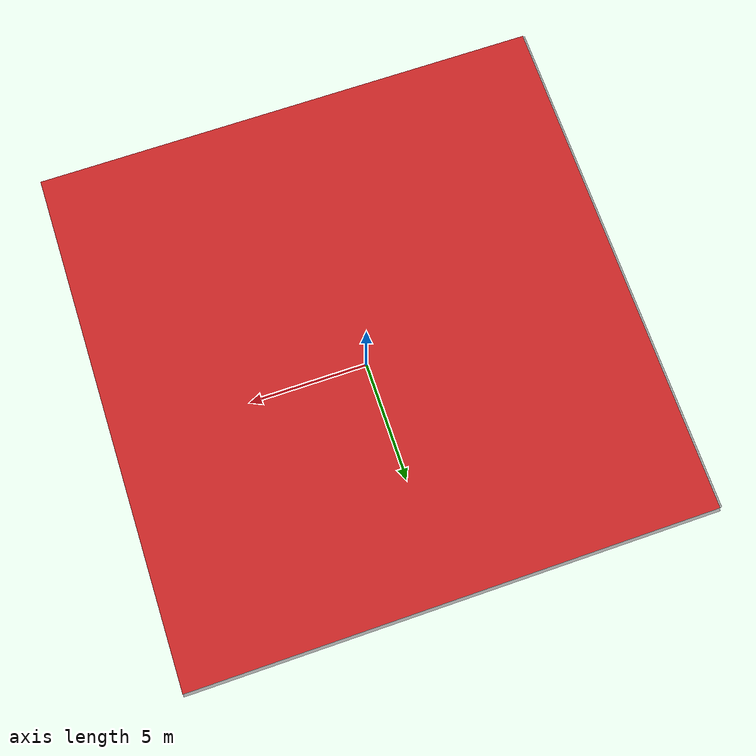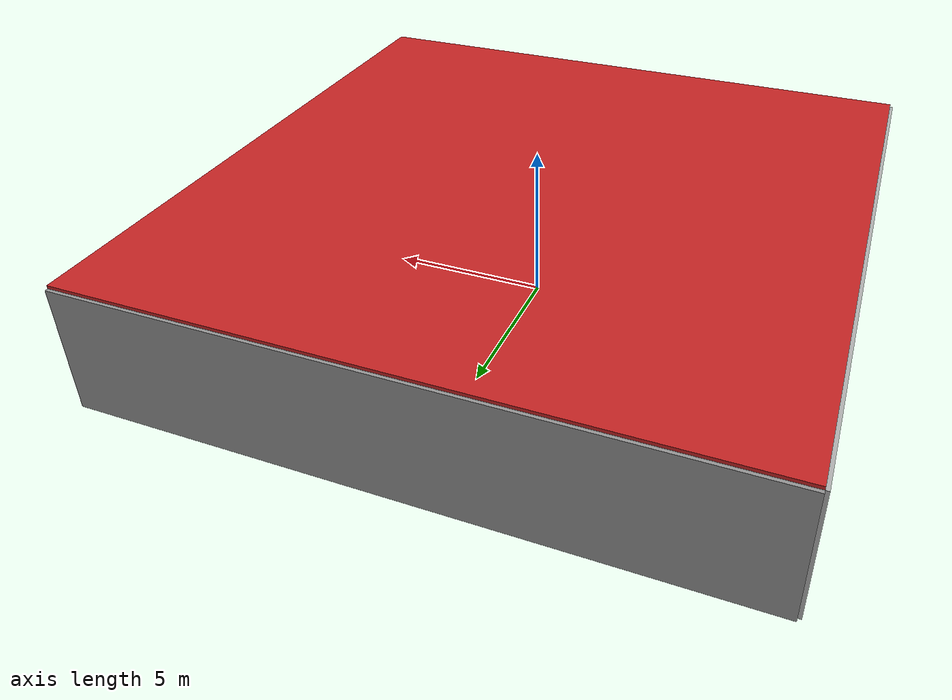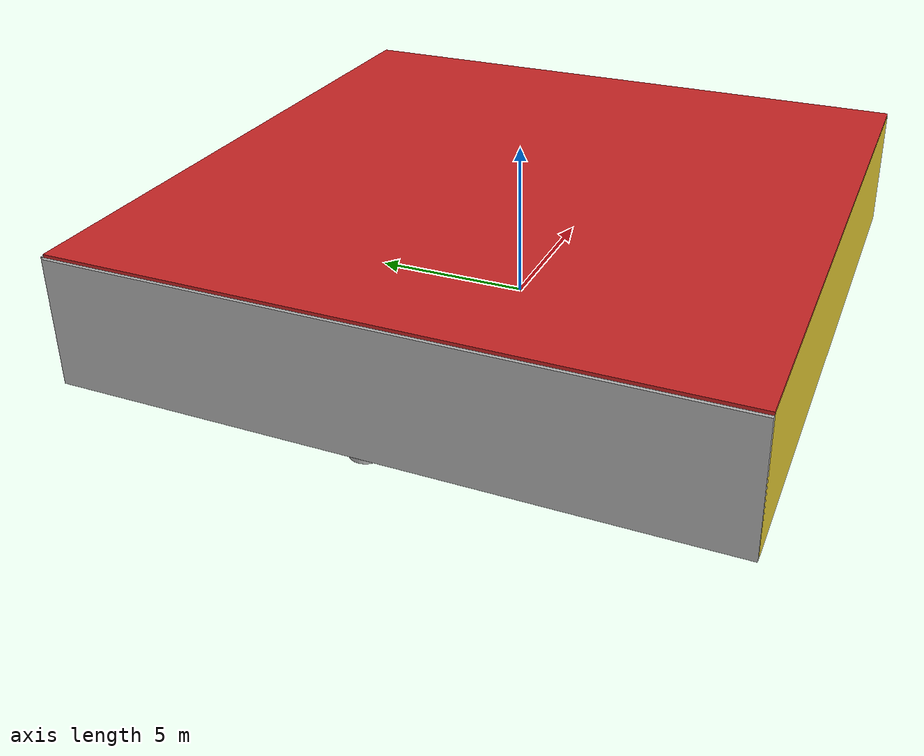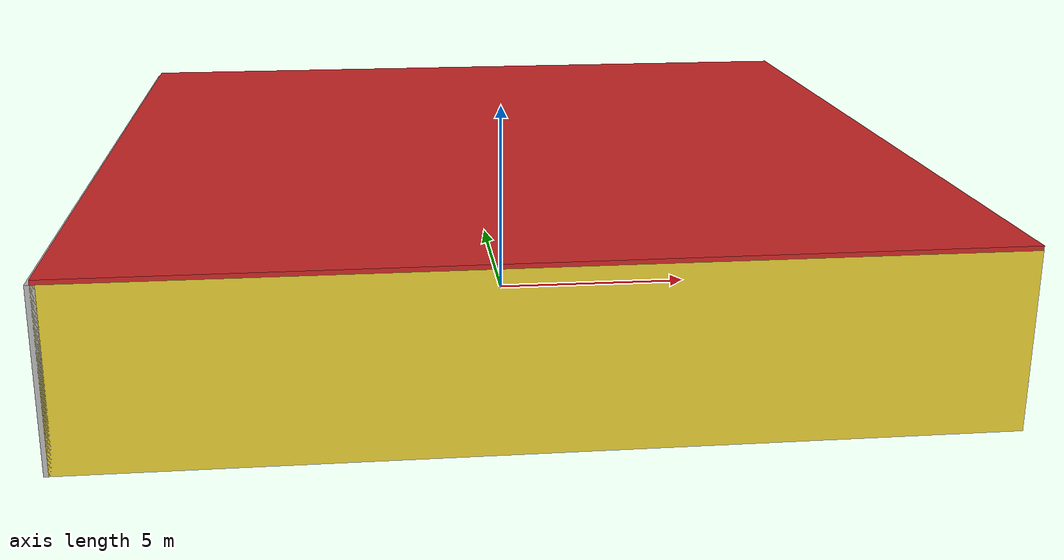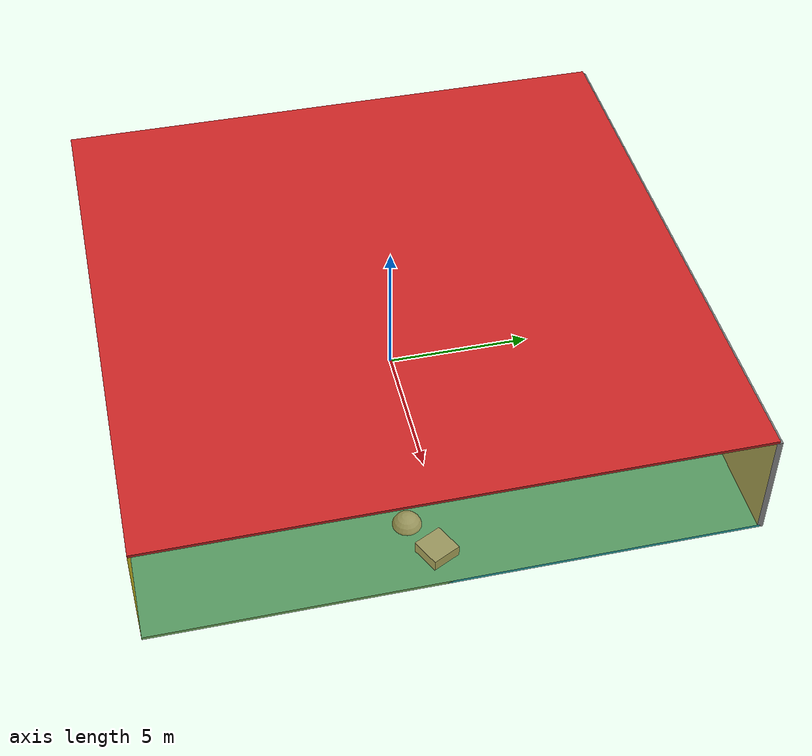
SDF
<sdf version="1.4">
 <world name="default">
  <physics type="ode">
   <max_step_size>0.001</max_step_size>
   <real_time_factor>1</real_time_factor>
   <real_time_update_rate>1000</real_time_update_rate>
   <gravity>0 0 -9.8</gravity>
  </physics>
  <scene><ambient>0.4 0.4 0.4 1</ambient><background>0.7 0.7 0.7 1</background><shadows>1</shadows></scene>
  <model name="Surrounding">
   <static>1</static>
   <link name="Ceiling">
    <collision name="Ceiling_Collision"><geometry><box><size>20 20 0.1</size></box></geometry></collision>
    <visual name="Ceiling_Visual">
     <geometry><box><size>20 20 0.1</size></box></geometry>
     <material>
      <script><uri>file://media/materials/scripts/gazebo.material</uri><name>Gazebo/RedGlow</name></script>
     </material>
    </visual>
    <pose>0 0 4.05 0 0 0</pose>
   </link>
   <link name="Wall_South">
    <collision name="Wall_South_Collision">
     <geometry><box><size>20 0 4</size></box></geometry>
     <pose>0 0 2 0 -0 0</pose>
    </collision>
    <visual name="Wall_South_Visual">
     <pose>0 0 2 0 -0 0</pose>
     <geometry><box><size>20 0 4</size></box></geometry>
     <material>
      <script><uri>file://media/materials/scripts/gazebo.material</uri><name>Gazebo/ZincYellow</name></script>
     </material>
    </visual>
    <velocity_decay><linear>0</linear><angular>0</angular></velocity_decay>
    <pose>0 -10 0 0 -0 0</pose>
   </link>
   <link name="Wall_East">
    <collision name="Wall_21_Collision">
     <geometry><box><size>20 0 4</size></box></geometry>
     <pose>0 0 2 0 -0 0</pose>
    </collision>
    <visual name="Wall_21_Visual">
     <pose>0 0 2 0 -0 0</pose>
     <geometry><box><size>20 0 4</size></box></geometry>
     <material>
      <script>
       <uri>file://media/materials/scripts/gazebo.material</uri>
       <name>Gazebo/YellowTransparent</name>
      </script>
     </material>
    </visual>
    <velocity_decay><linear>0</linear><angular>0</angular></velocity_decay>
    <pose>10 0 0 0 -0 1.5708</pose>
   </link>
   <link name="Wall_North">
    <collision name="Wall_22_Collision">
     <geometry><box><size>20 0.2 4</size></box></geometry>
     <pose>0 0 2 0 -0 0</pose>
    </collision>
    <visual name="Wall_22_Visual">
     <pose>0 0 2 0 -0 0</pose>
     <geometry><box><size>20 0.2 4</size></box></geometry>
     <material>
      <script><uri>file://media/materials/scripts/gazebo.material</uri><name>Gazebo/GreyGradientSky</name></script>
     </material>
    </visual>
    <velocity_decay><linear>0</linear><angular>0</angular></velocity_decay>
    <pose>0 10 0 0 -0 0</pose>
   </link>
   <link name="Wall_West">
    <collision name="Wall_23_Collision">
     <geometry><box><size>20 0.2 4</size></box></geometry>
     <pose>0 0 2 0 -0 0</pose>
    </collision>
    <visual name="Wall_23_Visual">
     <pose>0 0 2 0 -0 0</pose>
     <geometry><box><size>20 0.2 4</size></box></geometry>
     <material>
      <script><uri>file://media/materials/scripts/gazebo.material</uri><name>Gazebo/PioneerBody</name></script>
     </material>
    </visual>
    <velocity_decay><linear>0</linear><angular>0</angular></velocity_decay>
    <pose>-10 0 0 0 0 -1.5708</pose>
   </link>
   <link name="Ground_link">
    <collision name="collision">
     <pose>0 0 .05 0 -0 0</pose>
     <geometry><box><size>20 20 0.1</size></box></geometry>
    </collision>
    <visual name="visual">
     <pose>0 0 .05 0 -0 0</pose>
     <geometry><box><size>20 20 0.1</size></box></geometry>
     <material>
      <script><uri>file://media/materials/scripts/gazebo.material</uri><name>Gazebo/Turquoise</name></script>
     </material>
    </visual>
   </link>
   <static>1</static>
  </model>
  <spherical_coordinates>
   <surface_model>EARTH_WGS84</surface_model>
   <latitude_deg>0</latitude_deg>
   <longitude_deg>0</longitude_deg>
   <elevation>0</elevation>
   <heading_deg>0</heading_deg>
  </spherical_coordinates>
  <light name="lightball_0" type="diffuse">
   <diffuse>0.8 0.8 0.8 1</diffuse>
   <specular>0.2 0.2 0.2 1</specular>
   <attenuation>
    <range>100</range>
    <constant>0.7</constant>
    <linear>0.01</linear>
    <quadratic>0.001</quadratic>
   </attenuation>
   <direction>-0.5 0.1 -0.9</direction>
   <pose>5.63543841523 3.3627413835 1.107012897 0 0 0</pose>
  </light>
  <light name="lightball_1" type="diffuse">
   <diffuse>0.8 0.8 0.8 1</diffuse>
   <specular>0.2 0.2 0.2 1</specular>
   <attenuation>
    <range>100</range>
    <constant>0.7</constant>
    <linear>0.01</linear>
    <quadratic>0.001</quadratic>
   </attenuation>
   <direction>-0.5 0.1 -0.9</direction>
   <pose>6.28651552971 -1.50011301209 2.87327592391 0 0 0</pose>
  </light>
  <light name="lightball_2" type="diffuse">
   <diffuse>0.8 0.8 0.8 1</diffuse>
   <specular>0.2 0.2 0.2 1</specular>
   <attenuation>
    <range>100</range>
    <constant>0.7</constant>
    <linear>0.01</linear>
    <quadratic>0.001</quadratic>
   </attenuation>
   <direction>-0.5 0.1 -0.9</direction>
   <pose>-5.23633510727 1.61390015613 3.17753342037 0 0 0</pose>
  </light>
  <light name="lightball_3" type="diffuse">
   <diffuse>0.8 0.8 0.8 1</diffuse>
   <specular>0.2 0.2 0.2 1</specular>
   <attenuation>
    <range>100</range>
    <constant>0.7</constant>
    <linear>0.01</linear>
    <quadratic>0.001</quadratic>
   </attenuation>
   <direction>-0.5 0.1 -0.9</direction>
   <pose>6.95452704425 1.9765900877 1.96249618027 0 0 0</pose>
  </light>
  <light name="lightball_4" type="diffuse">
   <diffuse>0.8 0.8 0.8 1</diffuse>
   <specular>0.2 0.2 0.2 1</specular>
   <attenuation>
    <range>100</range>
    <constant>0.7</constant>
    <linear>0.01</linear>
    <quadratic>0.001</quadratic>
   </attenuation>
   <direction>-0.5 0.1 -0.9</direction>
   <pose>2.28461911887 2.3316555164 1.56552147713 0 0 0</pose>
  </light>
  <light name="lightball_5" type="diffuse">
   <diffuse>0.8 0.8 0.8 1</diffuse>
   <specular>0.2 0.2 0.2 1</specular>
   <attenuation>
    <range>100</range>
    <constant>0.7</constant>
    <linear>0.01</linear>
    <quadratic>0.001</quadratic>
   </attenuation>
   <direction>-0.5 0.1 -0.9</direction>
   <pose>9.60843019165 -5.2833176272 1.70039944485 0 0 0</pose>
  </light>
  <light name="lightball_6" type="diffuse">
   <diffuse>0.8 0.8 0.8 1</diffuse>
   <specular>0.2 0.2 0.2 1</specular>
   <attenuation>
    <range>100</range>
    <constant>0.7</constant>
    <linear>0.01</linear>
    <quadratic>0.001</quadratic>
   </attenuation>
   <direction>-0.5 0.1 -0.9</direction>
   <pose>6.32837892951 -9.15447927833 3.12907712222 0 0 0</pose>
  </light>
  <light name="lightball_7" type="diffuse">
   <diffuse>0.8 0.8 0.8 1</diffuse>
   <specular>0.2 0.2 0.2 1</specular>
   <attenuation>
    <range>100</range>
    <constant>0.7</constant>
    <linear>0.01</linear>
    <quadratic>0.001</quadratic>
   </attenuation>
   <direction>-0.5 0.1 -0.9</direction>
   <pose>-7.64292844378 -9.85374266515 0.560920000528 0 0 0</pose>
  </light>
  <include>
   <uri>model://textured_shapes</uri>
   <pose>-8.15934631694 1.82064809377 0 0 0 2.39413741509</pose>
  </include>
  <include><uri>model://cabinet</uri><pose>0.743221299874 -7.11786128445 0 0 0 2.92267509287</pose></include>
  <include><uri>model://cabinet</uri><pose>4.75771901327 -7.93109432027 0 0 0 0.782625940429</pose></include>
  <include>
   <uri>model://textured_shapes</uri>
   <pose>7.46707047321 -1.13650157863 0 0 0 2.0297140345</pose>
  </include>
 </world>
</sdf>

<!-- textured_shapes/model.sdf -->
<sdf version="1.6">
  <model name="textured_shapes">
    <pose>0 0 0.5 0 0 0</pose>
    <link name="box">
      <pose>0 -1.5 0 0 0 0</pose>
      <collision name="collision">
        <geometry>
          <box>
            <size>1 1 1</size>
          </box>
        </geometry>
      </collision>
      <visual name="visual">
        <geometry>
          <box>
            <size>1 1 1</size>
          </box>
        </geometry>
        <material>
          <script>
            <uri>model://../model_source/models/textured_shapes/materials/scripts</uri>
            <uri>model://../model_source/models/textured_shapes/materials/textures</uri>
            <name>TexturedShape/Squares</name>
          </script>
        </material>
      </visual>
    </link>
    <link name="sphere">
      <collision name="collision">
        <geometry>
          <sphere>
            <radius>0.5</radius>
          </sphere>
        </geometry>
      </collision>
      <visual name="visual">
        <geometry>
          <sphere>
            <radius>0.5</radius>
          </sphere>
        </geometry>
        <material>
          <script>
            <uri>model://../model_source/models/textured_shapes/materials/scripts</uri>
            <uri>model://../model_source/models/textured_shapes/materials/textures</uri>
            <name>TexturedShape/Squares</name>
          </script>
        </material>
      </visual>
    </link>
    <link name="cylinder">
      <pose>0 1.5 0 0 0 0</pose>
      <collision name="collision">
        <geometry>
          <cylinder>
            <radius>0.5</radius>
            <length>1</length>
          </cylinder>
        </geometry>
      </collision>
      <visual name="visual">
        <geometry>
          <cylinder>
            <radius>0.5</radius>
            <length>1</length>
          </cylinder>
        </geometry>
        <material>
          <script>
            <uri>model://../model_source/models/textured_shapes/materials/scripts</uri>
            <uri>model://../model_source/models/textured_shapes/materials/textures</uri>
            <name>TexturedShape/Squares</name>
          </script>
        </material>
      </visual>
    </link>
  </model>
</sdf>

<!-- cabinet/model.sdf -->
<sdf version="1.5">
  <model name="cabinet">
    <static>true</static>
    <link name="cabinet_bottom_plate">
      <inertial>
        <pose>0 0 -1 0 0 0</pose>
        <inertia>
          <ixx>2.050000</ixx>
          <ixy>0</ixy>
          <ixz>0</ixz>
          <iyy>2.050000</iyy>
          <iyz>0</iyz>
          <izz>2.050000</izz>
        </inertia>
        <mass>25.000000</mass>
      </inertial>
      <collision name="cabinet_bottom_plate_geom">
        <pose>0 0 0.010000 0 0 0</pose>
        <geometry>
          <box>
            <size>0.450000 0.450000 0.020000</size>
          </box>
        </geometry>
      </collision>
      <visual name="cabinet_bottom_plate_geom_visual">
        <pose>0 0 0.010000 0 0 0</pose>
        <geometry>
          <box>
            <size>0.450000 0.450000 0.020000</size>
          </box>
        </geometry>
        <material>
          <script>
            <uri>model://media/materials/scripts/gazebo.material</uri>
            <name>Gazebo/Wood</name>
          </script>
        </material>
      </visual>
      <collision name="cabinet_bottom_plate_geom_cabinet_back_plate">
        <pose>0.235000 0 0.510000 0 0 0</pose>
        <geometry>
          <box>
            <size>0.020000 0.450000 1.020000</size>
          </box>
        </geometry>
      </collision>
      <visual name="cabinet_bottom_plate_geom_cabinet_back_plate_visual">
        <pose>0.235000 0 0.510000 0 0 0</pose>
        <geometry>
          <box>
            <size>0.020000 0.450000 1.020000</size>
          </box>
        </geometry>
        <material>
          <script>
            <uri>model://media/materials/scripts/gazebo.material</uri>
            <name>Gazebo/Wood</name>
          </script>
        </material>
      </visual>
      <collision name="cabinet_bottom_plate_geom_cabinet_left_plate">
        <pose>0 0.235000 0.510000 0 0 0</pose>
        <geometry>
          <box>
            <size>0.450000 0.020000 1.020000</size>
          </box>
        </geometry>
      </collision>
      <visual name="cabinet_bottom_plate_geom_cabinet_left_plate_visual">
        <pose>0 0.235000 0.510000 0 0 0</pose>
        <geometry>
          <box>
            <size>0.450000 0.020000 1.020000</size>
          </box>
        </geometry>
        <material>
          <script>
            <uri>model://media/materials/scripts/gazebo.material</uri>
            <name>Gazebo/Wood</name>
          </script>
        </material>
      </visual>
      <collision name="cabinet_bottom_plate_geom_cabinet_middle_plate">
        <pose>0 0 0.510000 0 0 0</pose>
        <geometry>
          <box>
            <size>0.450000 0.450000 0.020000</size>
          </box>
        </geometry>
      </collision>
      <visual name="cabinet_bottom_plate_geom_cabinet_middle_plate_visual">
        <pose>0 0 0.510000 0 0 0</pose>
        <geometry>
          <box>
            <size>0.450000 0.450000 0.020000</size>
          </box>
        </geometry>
        <material>
          <script>
            <uri>model://media/materials/scripts/gazebo.material</uri>
            <name>Gazebo/Wood</name>
          </script>
        </material>
      </visual>
      <collision name="cabinet_bottom_plate_geom_cabinet_right_plate">
        <pose>0 -0.235000 0.510000 0 0 0</pose>
        <geometry>
          <box>
            <size>0.450000 0.020000 1.020000</size>
          </box>
        </geometry>
      </collision>
      <visual name="cabinet_bottom_plate_geom_cabinet_right_plate_visual">
        <pose>0 -0.235000 0.510000 0 0 0</pose>
        <geometry>
          <box>
            <size>0.450000 0.020000 1.020000</size>
          </box>
        </geometry>
        <material>
          <script>
            <uri>model://media/materials/scripts/gazebo.material</uri>
            <name>Gazebo/Wood</name>
          </script>
        </material>
      </visual>
      <collision name="cabinet_bottom_plate_geom_cabinet_top_plate">
        <pose>0 0 1.010000 0 0 0</pose>
        <geometry>
          <box>
            <size>0.450000 0.450000 0.020000</size>
          </box>
        </geometry>
      </collision>
      <visual name="cabinet_bottom_plate_geom_cabinet_top_plate_visual">
        <pose>0 0 1.010000 0 0 0</pose>
        <geometry>
          <box>
            <size>0.450000 0.450000 0.020000</size>
          </box>
        </geometry>
        <material>
          <script>
            <uri>model://media/materials/scripts/gazebo.material</uri>
            <name>Gazebo/Wood</name>
          </script>
        </material>
      </visual>
    </link>
  </model>
</sdf>
